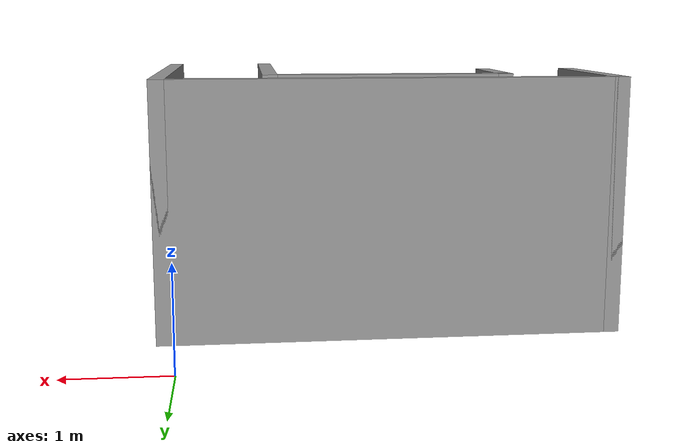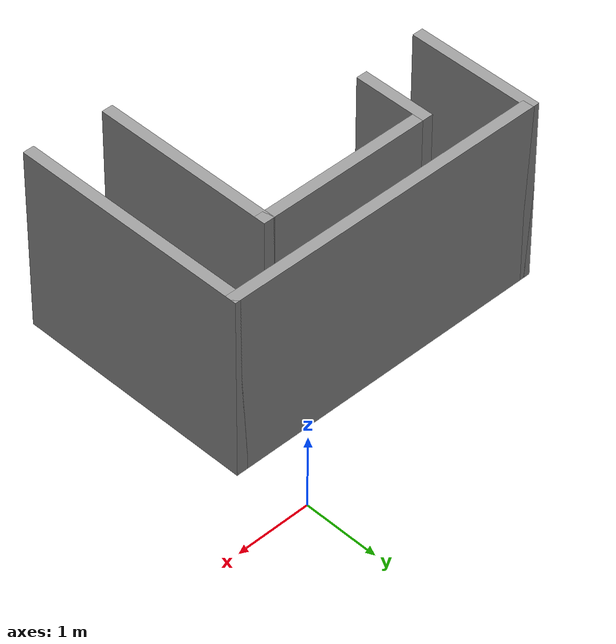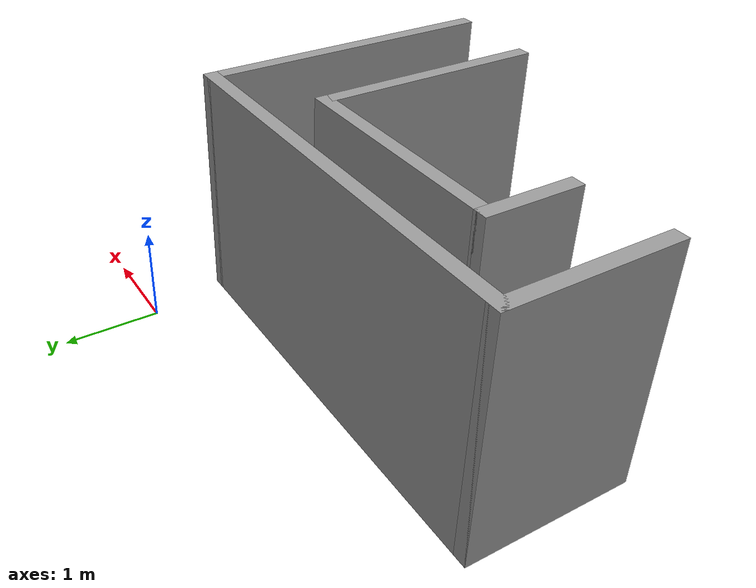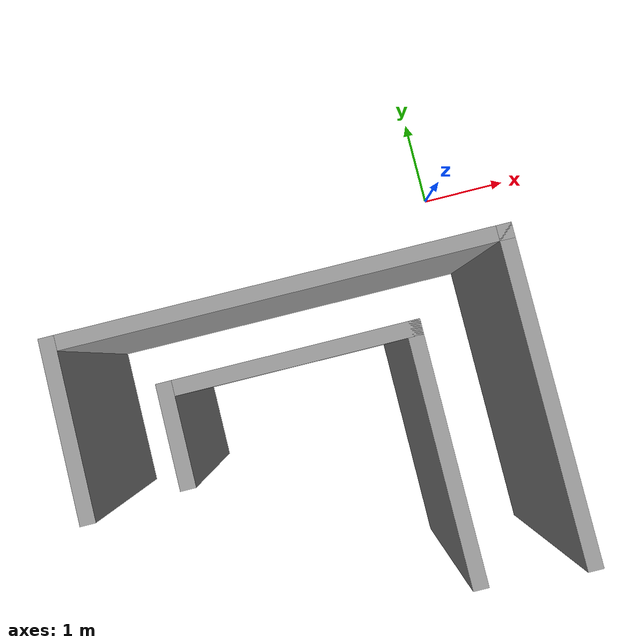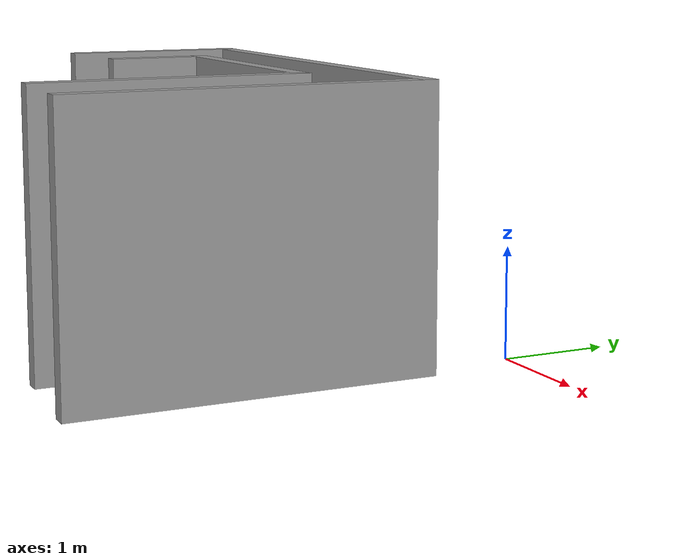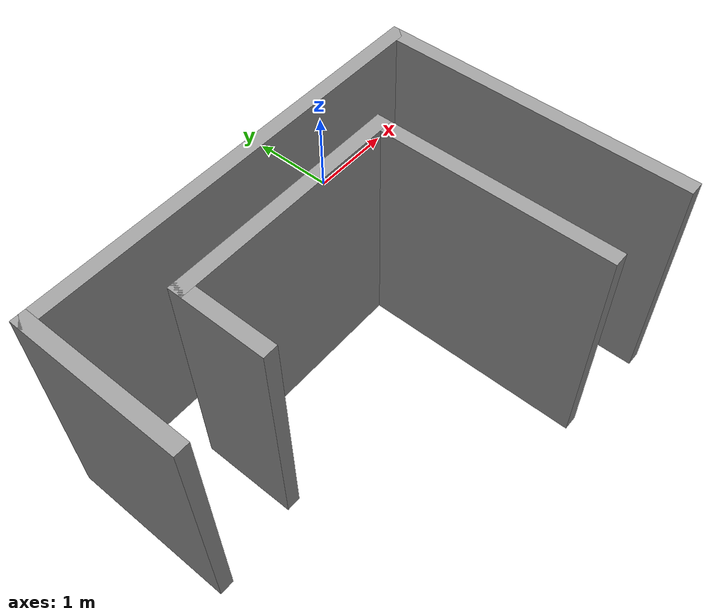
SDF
<?xml version='1.0'?>
<sdf version='1.6'>
  <model name='small_maze'>
    <pose frame=''>-2.01797 -2.4523 0 0 -0 0</pose>
    <link name='Wall_1'>
      <collision name='Wall_1_Collision'>
        <geometry>
          <box>
            <size>1 0.15 2.5</size>
          </box>
        </geometry>
        <pose frame=''>0 0 1.25 0 -0 0</pose>
      </collision>
      <visual name='Wall_1_Visual'>
        <pose frame=''>0 0 1.25 0 -0 0</pose>
        <geometry>
          <box>
            <size>1 0.15 2.5</size>
          </box>
        </geometry>
        <material>
          <script>
            <uri>file://media/materials/scripts/gazebo.material</uri>
            <name>Gazebo/Grey</name>
          </script>
          <ambient>1 1 1 1</ambient>
        </material>
      </visual>
      <pose frame=''>-1.22217 0.461604 0 0 -0 1.5708</pose>
    </link>
    <link name='Wall_2'>
      <collision name='Wall_2_Collision'>
        <geometry>
          <box>
            <size>2.5 0.15 2.5</size>
          </box>
        </geometry>
        <pose frame=''>0 0 1.25 0 -0 0</pose>
      </collision>
      <visual name='Wall_2_Visual'>
        <pose frame=''>0 0 1.25 0 -0 0</pose>
        <geometry>
          <box>
            <size>2.5 0.15 2.5</size>
          </box>
        </geometry>
        <material>
          <script>
            <uri>file://media/materials/scripts/gazebo.material</uri>
            <name>Gazebo/Grey</name>
          </script>
          <ambient>1 1 1 1</ambient>
        </material>
      </visual>
      <pose frame=''>-0.047171 0.886604 0 0 -0 0</pose>
    </link>
    <link name='Wall_3'>
      <collision name='Wall_3_Collision'>
        <geometry>
          <box>
            <size>2.5 0.15 2.5</size>
          </box>
        </geometry>
        <pose frame=''>0 0 1.25 0 -0 0</pose>
      </collision>
      <visual name='Wall_3_Visual'>
        <pose frame=''>0 0 1.25 0 -0 0</pose>
        <geometry>
          <box>
            <size>2.5 0.15 2.5</size>
          </box>
        </geometry>
        <material>
          <script>
            <uri>file://media/materials/scripts/gazebo.material</uri>
            <name>Gazebo/Grey</name>
          </script>
          <ambient>1 1 1 1</ambient>
        </material>
      </visual>
      <pose frame=''>1.12783 -0.288396 0 0 0 -1.5708</pose>
    </link>
    <link name='Wall_5'>
      <collision name='Wall_5_Collision'>
        <geometry>
          <box>
            <size>1.75 0.15 2.5</size>
          </box>
        </geometry>
        <pose frame=''>0 0 1.25 0 -0 0</pose>
      </collision>
      <visual name='Wall_5_Visual'>
        <pose frame=''>0 0 1.25 0 -0 0</pose>
        <geometry>
          <box>
            <size>1.75 0.15 2.5</size>
          </box>
        </geometry>
        <material>
          <script>
            <uri>file://media/materials/scripts/gazebo.material</uri>
            <name>Gazebo/Grey</name>
          </script>
          <ambient>1 1 1 1</ambient>
        </material>
      </visual>
      <pose frame=''>-2.175 0.75 0 0 -0 1.5708</pose>
    </link>
    <link name='Wall_6'>
      <collision name='Wall_6_Collision'>
        <geometry>
          <box>
            <size>4.5 0.15 2.5</size>
          </box>
        </geometry>
        <pose frame=''>0 0 1.25 0 -0 0</pose>
      </collision>
      <visual name='Wall_6_Visual'>
        <pose frame=''>0 0 1.25 0 -0 0</pose>
        <geometry>
          <box>
            <size>4.5 0.15 2.5</size>
          </box>
        </geometry>
        <material>
          <script>
            <uri>file://media/materials/scripts/gazebo.material</uri>
            <name>Gazebo/Grey</name>
          </script>
          <ambient>1 1 1 1</ambient>
        </material>
      </visual>
      <pose frame=''>0 1.55 0 0 -0 0</pose>
    </link>
    <link name='Wall_7'>
      <collision name='Wall_7_Collision'>
        <geometry>
          <box>
            <size>3.25 0.15 2.5</size>
          </box>
        </geometry>
        <pose frame=''>0 0 1.25 0 -0 0</pose>
      </collision>
      <visual name='Wall_7_Visual'>
        <pose frame=''>0 0 1.25 0 -0 0</pose>
        <geometry>
          <box>
            <size>3.25 0.15 2.5</size>
          </box>
        </geometry>
        <material>
          <script>
            <uri>file://media/materials/scripts/gazebo.material</uri>
            <name>Gazebo/Grey</name>
          </script>
          <ambient>1 1 1 1</ambient>
        </material>
      </visual>
      <pose frame=''>2.175 0 0 0 0 -1.5708</pose>
    </link>
    <static>1</static>
  </model>
</sdf>
